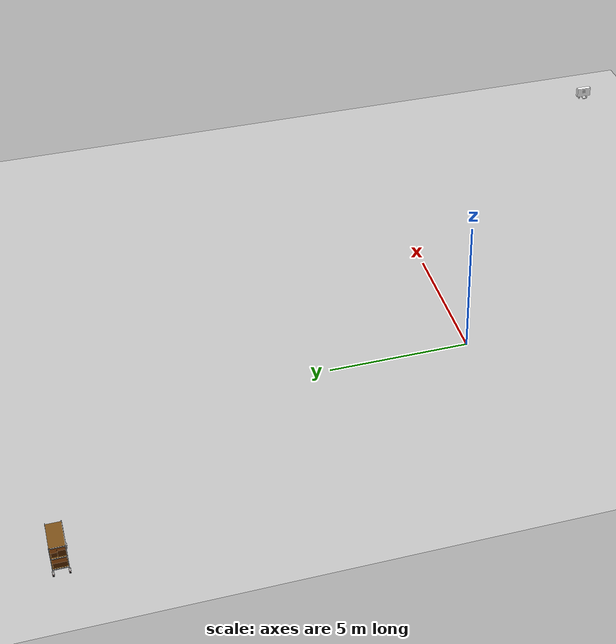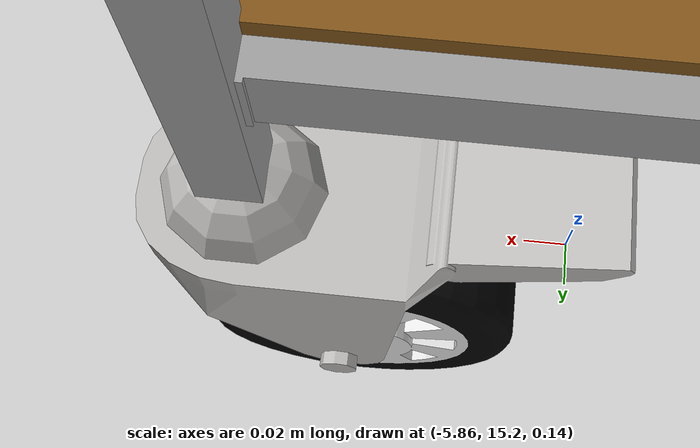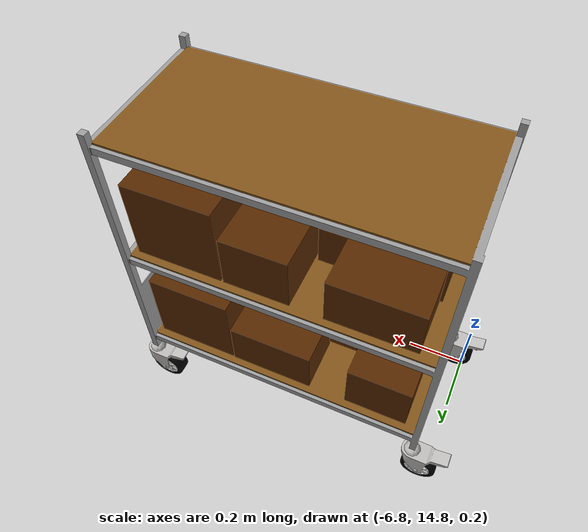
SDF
<sdf version="1.8">
 <world name="tugbot_warehouse">
  <gravity>0 0 -9.8</gravity>
  <physics type="ode">
   <max_step_size>0.001</max_step_size>
   <real_time_factor>1</real_time_factor>
   <real_time_update_rate>1000</real_time_update_rate>
  </physics>
  <plugin filename="gz-sim-physics-system" name="gz::sim::systems::Physics"/>
  <plugin filename="gz-sim-user-commands-system" name="gz::sim::systems::UserCommands"/>
  <plugin filename="gz-sim-scene-broadcaster-system" name="gz::sim::systems::SceneBroadcaster"/>
  <plugin filename="gz-sim-imu-system" name="gz::sim::systems::Imu"/>
  <plugin filename="gz-sim-sensors-system" name="gz::sim::systems::Sensors">
   <render_engine>ogre2</render_engine>
  </plugin>
  <scene>
   <ambient>1 1 1 1</ambient>
   <background>0.3 0.7 0.9 1</background>
   <shadows>0</shadows>
   <grid>false</grid>
  </scene>
  <light type="directional" name="sun">
   <cast_shadows>0</cast_shadows>
   <pose>-5 -3 10 0 0 0</pose>
   <diffuse>1 1 1 1</diffuse>
   <specular>1 1 1 1</specular>
   <direction>0 0 -1</direction>
  </light>
  <model name="ground_plane">
   <static>true</static>
   <link name="link">
    <collision name="collision">
     <geometry><plane><normal>0.0 0.0 1</normal><size>100 100</size></plane></geometry>
    </collision>
    <visual name="visual">
     <geometry><plane><normal>0.0 0.0 1</normal><size>100 100</size></plane></geometry>
     <material><ambient>0.8 0.8 0.8 1</ambient><diffuse>0.8 0.8 0.8 1</diffuse></material>
    </visual>
   </link>
  </model>
  <include>
   <uri>model://Tugbot-charging-station</uri>
   <name>charging_station</name>
   <pose>14.7 -10.6 -0.04 0 0 0</pose>
  </include>
  <include><uri>model://cart_model_2</uri><name>cart1</name><pose>-5.73 15 0.25 0 0 0</pose></include>
 </world>
</sdf>

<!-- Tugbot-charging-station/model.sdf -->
<sdf version='1.6'>
  <model name='charging_station'>
    <pose>0 0 0 0 0 0</pose>
    <!-- BASE_LINK FRAME -->
    <link name='charging_station_base_link'>
      <pose>0 0 0.05 0 0 -1.570796327</pose>
      <collision name='charging_station_collision'>
        <pose>0 0 0.3 0 0 -1.570796327</pose>
        <geometry>
          <box>
            <size>0.1 0.55 0.4</size>
          </box>
        </geometry>
      </collision>
      <visual name='charging_station_visual'>
        <pose>0 0 0 0 0 0</pose>
        <geometry>
          <mesh>
            <scale>1 1 1</scale>
            <uri>meshes/charging_station.dae</uri>
          </mesh>
        </geometry>
      </visual>
    </link>
    <static>1</static>
  </model>
</sdf>

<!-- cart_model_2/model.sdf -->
<sdf version="1.7">
    <model name="cart_model2">
        <pose>0 0 0 0 0 0</pose>
        <!-- BASE_LINK FRAME -->
        <link name="base_link">
            <pose>0 0 0 0 0 -1.57079632679</pose>
            <inertial>
                <pose>0 -0.5 0.5 0 0 0</pose>
                <mass>30</mass>
                <inertia>
                    <ixx>0.1</ixx>
                    <ixy>0</ixy>
                    <ixz>0</ixz>
                    <iyy>0.1</iyy>
                    <iyz>0</iyz>
                    <izz>0.1</izz>
                </inertia>
            </inertial>
            <collision name="base_link_collision">
                <pose>0 0 0 0 0 0</pose>
                <geometry>
                    <mesh>
                        <scale>1 1 1</scale>
                        <uri>meshes/cart_base_collision.stl</uri>
                    </mesh>
                </geometry>
                <max_contacts>5</max_contacts>
                <surface>
                    <contact>
                        <ode>
                            <soft_cfm>1.0</soft_cfm>
                            <soft_erp>0.4</soft_erp>
                            <kp>1000000.0</kp>
                            <kd>1</kd>
                            <min_depth>0.01</min_depth>
                        </ode>
                    </contact>
                    <friction>
                        <ode>
                            <mu>1.16</mu>
                            <mu2>1.16</mu2>
                        </ode>
                    </friction>
                </surface>
            </collision>
            <visual name="base_link_visual">
                <pose>0 0 0 0 0 0</pose>
                <geometry>
                    <mesh>
                        <scale>1 1 1</scale>
                        <uri>meshes/cart_base.dae</uri>
                        <submesh>
                            <name>base_metal</name>
                            <center>false</center>
                        </submesh>
                    </mesh>
                </geometry>
            </visual>
            <visual name="base_shelf_visual">
                <pose>0 0 0 0 0 0</pose>
                <geometry>
                    <mesh>
                        <scale>1 1 1</scale>
                        <uri>meshes/cart_base.dae</uri>
                        <submesh>
                            <name>base_shelf</name>
                            <center>false</center>
                        </submesh>
                    </mesh>
                </geometry>
            </visual>
            <visual name="back_left_sup_visual">
                <pose>-0.245 -1.005 0.05 0 0 0</pose>
                <geometry>
                    <mesh>
                        <scale>1 1 1</scale>
                        <uri>meshes/sup_wheels.dae</uri>
                    </mesh>
                </geometry>
            </visual>
            <visual name="back_right_sup_visual">
                <pose>0.245 -1.005 0.05 0 0 0</pose>
                <geometry>
                    <mesh>
                        <scale>1 1 1</scale>
                        <uri>meshes/sup_wheels.dae</uri>
                    </mesh>
                </geometry>
            </visual>
            <visual name="tag_visual">
                <pose>0 0 0 0 0 0</pose>
                <geometry>
                    <mesh>
                        <scale>1 1 1</scale>
                        <uri>meshes/cart_base.dae</uri>
                        <submesh>
                            <name>tag</name>
                            <center>false</center>
                        </submesh>
                    </mesh>
                </geometry>
                <material>
                    <diffuse>1.0 1.0 1.0</diffuse>
                    <specular>1.0 1.0 1.0</specular>
                    <pbr>
                        <metal>
                            <albedo_map>meshes/cart_tag.png</albedo_map>
                        </metal>
                    </pbr>
                </material>
            </visual>
        </link>
        <!-- Wheels -->
        <!-- Back Left -->
        <link name="back_left">
            <pose>-1.04 -0.245 -0.05 0 0 1.570796327</pose>
            <inertial>
                <pose>0 0 0 0 1.570796327 0</pose>
                <mass>0.01</mass>
                <inertia>
                    <ixx>0.0000175</ixx>
                    <ixy>0</ixy>
                    <ixz>0</ixz>
                    <iyy>0.0000175</iyy>
                    <iyz>0</iyz>
                    <izz>0.00003125</izz>
                </inertia>
            </inertial>
            <collision name="back_left_collision">
                <pose>0 0 0 0 1.570796327 0</pose>
                <geometry>
                    <cylinder>
                        <length>0.03</length>
                        <radius>0.06</radius>
                    </cylinder>
                </geometry>
                <max_contacts>5</max_contacts>
                <surface>
                    <contact>
                        <ode>
                            <soft_cfm>1.0</soft_cfm>
                            <soft_erp>0.4</soft_erp>
                            <kp>1000000.0</kp>
                            <kd>1</kd>
                            <min_depth>0.01</min_depth>
                        </ode>
                    </contact>
                    <friction>
                        <ode>
                            <mu>1.16</mu>
                            <mu2>1.16</mu2>
                        </ode>
                    </friction>
                </surface>
            </collision>
            <visual name="back_left_visual">
                <pose>0 0 0 0 0 0</pose>
                <geometry>
                    <mesh>
                        <scale>1 1 1</scale>
                        <uri>meshes/wheel.dae</uri>
                    </mesh>
                </geometry>
            </visual>
        </link>
        <joint name="back_left_joint" type="revolute">
            <child>back_left</child>
            <parent>base_link</parent>
            <axis>
                <xyz>1 0 0</xyz>
                <dynamics>
                    <friction>0.5</friction>
                    <damping>0.0001</damping>
                </dynamics>
            </axis>
        </joint>
        <!-- Back Right -->
        <link name="back_right">
            <pose>-1.04 0.245 -0.05 0 0 1.570796327</pose>
            <inertial>
                <pose>0 0 0 0 1.570796327 0</pose>
                <mass>0.01</mass>
                <inertia>
                    <ixx>0.0000175</ixx>
                    <ixy>0</ixy>
                    <ixz>0</ixz>
                    <iyy>0.0000175</iyy>
                    <iyz>0</iyz>
                    <izz>0.00003125</izz>
                </inertia>
            </inertial>
            <collision name="back_right_collision">
                <pose>0 0 0 0 1.570796327 0</pose>
                <geometry>
                    <cylinder>
                        <length>0.03</length>
                        <radius>0.06</radius>
                    </cylinder>
                </geometry>
                <max_contacts>5</max_contacts>
                <surface>
                    <contact>
                        <ode>
                            <soft_cfm>1.0</soft_cfm>
                            <soft_erp>0.4</soft_erp>
                            <kp>1000000.0</kp>
                            <kd>1</kd>
                            <min_depth>0.01</min_depth>
                        </ode>
                    </contact>
                    <friction>
                        <ode>
                            <mu>1.16</mu>
                            <mu2>1.16</mu2>
                        </ode>
                    </friction>
                </surface>
            </collision>
            <visual name="back_right_visual">
                <pose>0 0 0 0 0 0</pose>
                <geometry>
                    <mesh>
                        <scale>1 1 1</scale>
                        <uri>meshes/wheel.dae</uri>
                    </mesh>
                </geometry>
            </visual>
        </link>
        <joint name="back_right_joint" type="revolute">
            <child>back_right</child>
            <parent>base_link</parent>
            <axis>
                <xyz>1 0 0</xyz>
                <dynamics>
                    <friction>0.5</friction>
                    <damping>0.0001</damping>
                </dynamics>
            </axis>
        </joint>
        <!-- Front Left -->
        <link name="wheel_sup_front_left">
            <pose>0 -0.245 0.05 0 0 1.570796327</pose>
            <inertial>
                <pose>0 0 0 0 0 0</pose>
                <mass>0.01</mass>
                <inertia>
                    <ixx>0.0000175</ixx>
                    <ixy>0</ixy>
                    <ixz>0</ixz>
                    <iyy>0.0000175</iyy>
                    <iyz>0</iyz>
                    <izz>0.0000175</izz>
                </inertia>
            </inertial>
            <visual name="wheel_sup_front_left_visual">
                <pose>0 0 0 0 0 3.14159265359</pose>
                <geometry>
                    <mesh>
                        <scale>1 1 1</scale>
                        <uri>meshes/sup_wheels.dae</uri>
                    </mesh>
                </geometry>
            </visual>
        </link>
        <joint name="wheel_sup_front_left_joint" type="revolute">
            <child>wheel_sup_front_left</child>
            <parent>base_link</parent>
            <axis>
                <xyz>0 0 1</xyz>
                <dynamics>
                    <damping>0.001</damping>
                </dynamics>
            </axis>
        </joint>
        <link name="front_left">
            <pose>-0.04 -0.245 -0.05 0 0 1.570796327</pose>
            <inertial>
                <pose>0 0 0 0 1.570796327 0</pose>
                <mass>0.01</mass>
                <inertia>
                    <ixx>0.0000175</ixx>
                    <ixy>0</ixy>
                    <ixz>0</ixz>
                    <iyy>0.0000175</iyy>
                    <iyz>0</iyz>
                    <izz>0.00003125</izz>
                </inertia>
            </inertial>
            <collision name="front_left_collision">
                <pose>0 0 0 0 1.570796327 0</pose>
                <geometry>
                    <cylinder>
                        <length>0.03</length>
                        <radius>0.06</radius>
                    </cylinder>
                </geometry>
                <max_contacts>5</max_contacts>
                <surface>
                    <contact>
                        <ode>
                            <soft_cfm>1.0</soft_cfm>
                            <soft_erp>0.4</soft_erp>
                            <kp>1000000.0</kp>
                            <kd>1</kd>
                            <min_depth>0.01</min_depth>
                        </ode>
                    </contact>
                    <friction>
                        <ode>
                            <mu>1.16</mu>
                            <mu2>1.16</mu2>
                        </ode>
                    </friction>
                </surface>
            </collision>
            <visual name="front_left_visual">
                <pose>0 0 0 0 0 0</pose>
                <geometry>
                    <mesh>
                        <scale>1 1 1</scale>
                        <uri>meshes/wheel.dae</uri>
                    </mesh>
                </geometry>
            </visual>
        </link>
        <joint name="front_left_joint" type="revolute">
            <child>front_left</child>
            <parent>wheel_sup_front_left</parent>
            <axis>
                <xyz>1 0 0</xyz>
                <dynamics>
                    <friction>0.5</friction>
                    <damping>0.0001</damping>
                </dynamics>
            </axis>
        </joint>
        <!-- Front Right -->
        <link name="wheel_sup_front_right">
            <pose>0 0.245 0.05 0 0 1.570796327</pose>
            <inertial>
                <pose>0 0 0 0 0 0</pose>
                <mass>0.01</mass>
                <inertia>
                    <ixx>0.0000175</ixx>
                    <ixy>0</ixy>
                    <ixz>0</ixz>
                    <iyy>0.0000175</iyy>
                    <iyz>0</iyz>
                    <izz>0.0000175</izz>
                </inertia>
            </inertial>
            <visual name="wheel_sup_front_right_visual">
                <pose>0 0 0 0 0 3.14159265359</pose>
                <geometry>
                    <mesh>
                        <scale>1 1 1</scale>
                        <uri>meshes/sup_wheels.dae</uri>
                    </mesh>
                </geometry>
            </visual>
        </link>
        <joint name="wheel_sup_front_right_joint" type="revolute">
            <child>wheel_sup_front_right</child>
            <parent>base_link</parent>
            <axis>
                <xyz>0 0 1</xyz>
                <dynamics>
                    <damping>0.001</damping>
                </dynamics>
            </axis>
        </joint>
        <link name="front_right">
            <pose>-0.04 0.245 -0.05 0 0 1.570796327</pose>
            <inertial>
                <pose>0 0 0 0 1.570796327 0</pose>
                <mass>0.01</mass>
                <inertia>
                    <ixx>0.0000175</ixx>
                    <ixy>0</ixy>
                    <ixz>0</ixz>
                    <iyy>0.0000175</iyy>
                    <iyz>0</iyz>
                    <izz>0.00003125</izz>
                </inertia>
            </inertial>
            <collision name="front_right_collision">
                <pose>0 0 0 0 1.570796327 0</pose>
                <geometry>
                    <cylinder>
                        <length>0.03</length>
                        <radius>0.06</radius>
                    </cylinder>
                </geometry>
                <max_contacts>5</max_contacts>
                <surface>
                    <contact>
                        <ode>
                            <soft_cfm>1.0</soft_cfm>
                            <soft_erp>0.4</soft_erp>
                            <kp>1000000.0</kp>
                            <kd>1</kd>
                            <min_depth>0.01</min_depth>
                        </ode>
                    </contact>
                    <friction>
                        <ode>
                            <mu>1.16</mu>
                            <mu2>1.16</mu2>
                        </ode>
                    </friction>
                </surface>
            </collision>
            <visual name="front_right_visual">
                <pose>0 0 0 0 0 0</pose>
                <geometry>
                    <mesh>
                        <scale>1 1 1</scale>
                        <uri>meshes/wheel.dae</uri>
                    </mesh>
                </geometry>
            </visual>
        </link>
        <joint name="front_right_joint" type="revolute">
            <child>front_right</child>
            <parent>wheel_sup_front_right</parent>
            <axis>
                <xyz>1 0 0</xyz>
                <dynamics>
                    <friction>0.5</friction>
                    <damping>0.0001</damping>
                </dynamics>
            </axis>
        </joint>
    </model>
</sdf>
